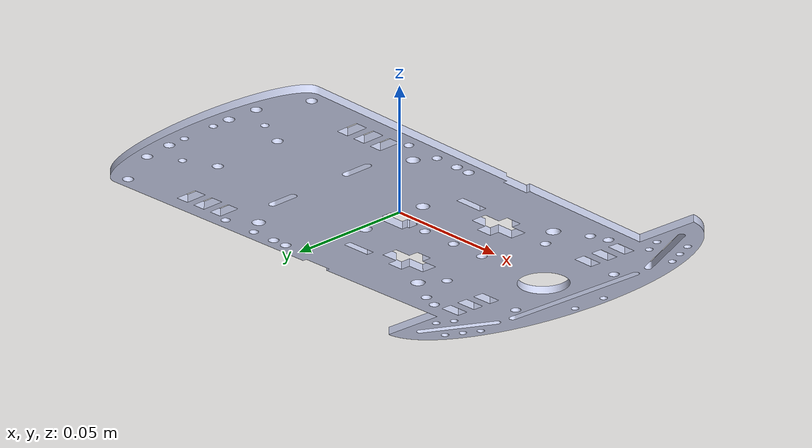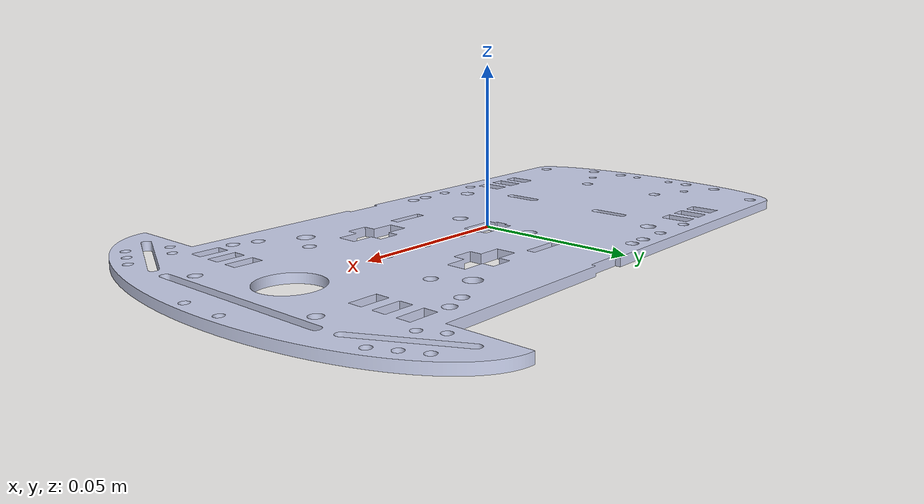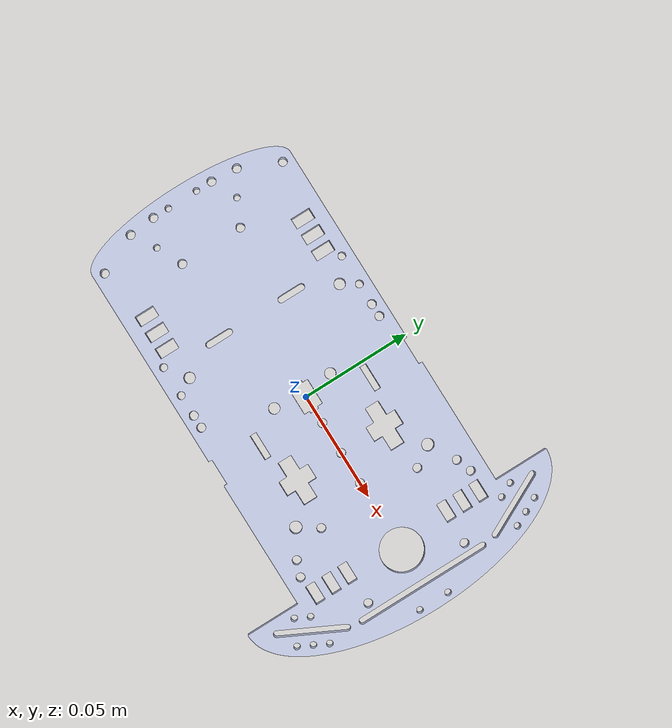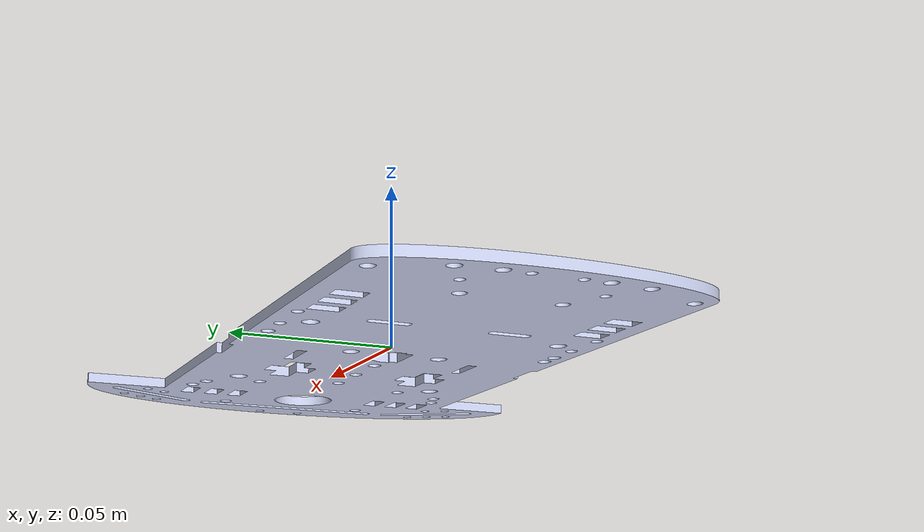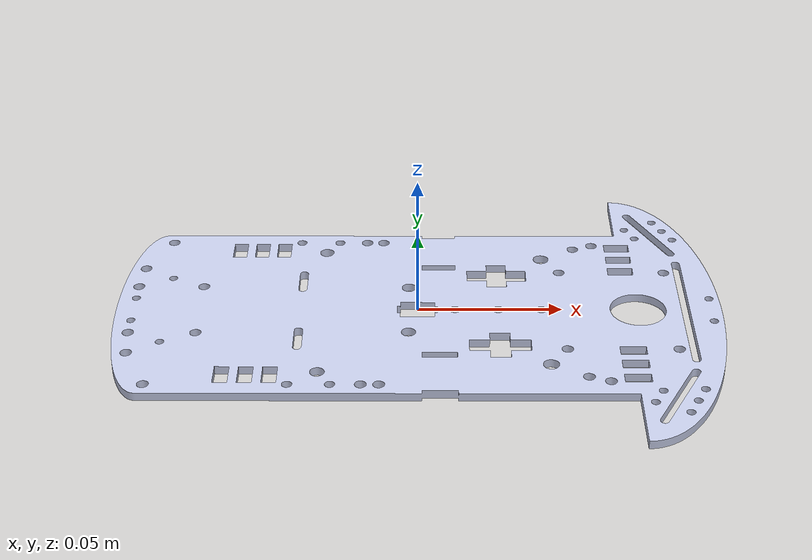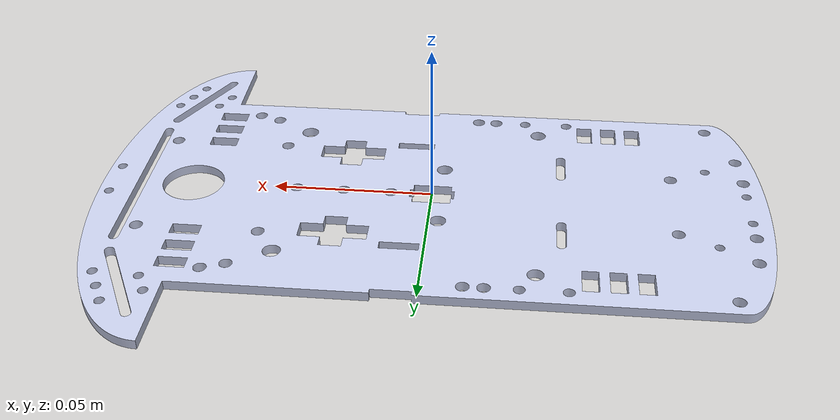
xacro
<?xml version="1.0"?>

<robot name="littlebot">

<!-- Included URDF XACRO Files -->

 <!--
Modelagem base_link "link"
-->
 <link name="base_link">
 </link>

 <link name="chassis">
    <visual>
      <origin xyz="0 0 0" rpy="0 0 0" />
      <geometry>
        <mesh filename="package://littlebot_description/meshes/littlebot.dae" />
      </geometry>
    </visual>
    <collision>
      <origin xyz="0 0 0" rpy="0 0 0" />
      <geometry>
	      <mesh filename="package://littlebot_description/meshes/chassis.dae" />
      </geometry>
    </collision>
    <inertial>
      <origin xyz="0 0 0" rpy="0 0 0"/>
      <mass value="0.19357368"/>
      <inertia ixx="1.84569610e-4"  ixy="-4.09475462e-6"  ixz="-2.91063667e-5" iyy="7.65700035e-4" iyz="2.32776537e-8" izz="9.00861891e-4" />
    </inertial>
  </link>

  <joint name="base_to_chassis" type="fixed">
    <parent link="base_link"/>
    <child link="chassis"/>
    <origin xyz="0.0 0.0 0.0" rpy="0 0 0" />

  </joint>

</robot>
